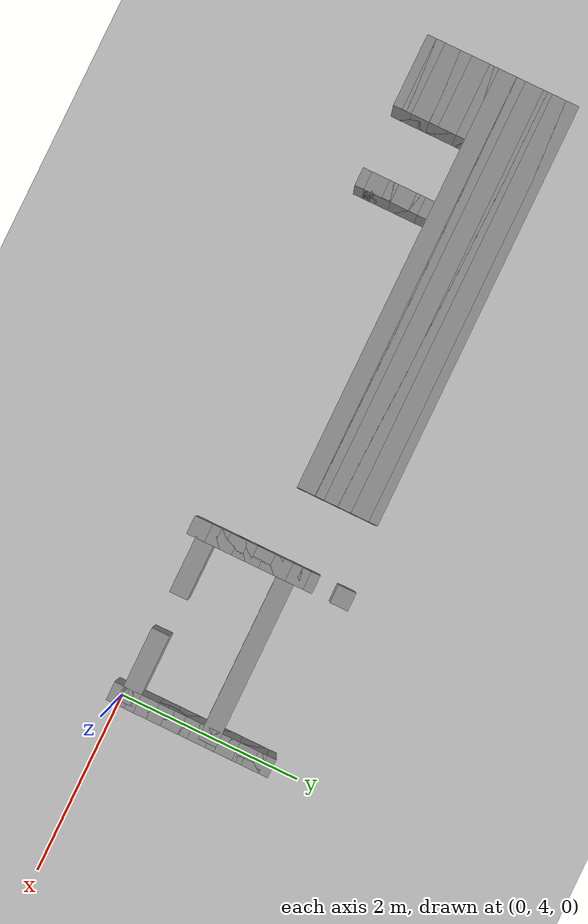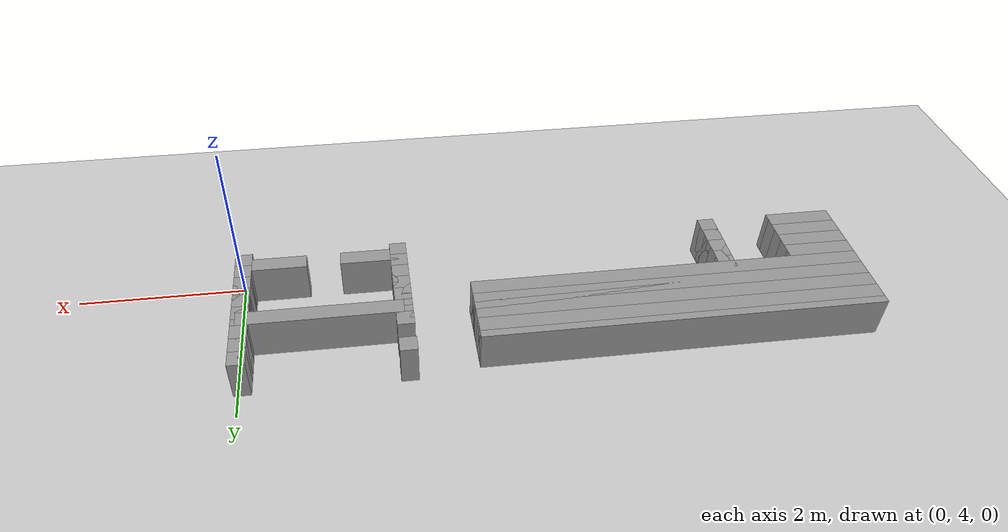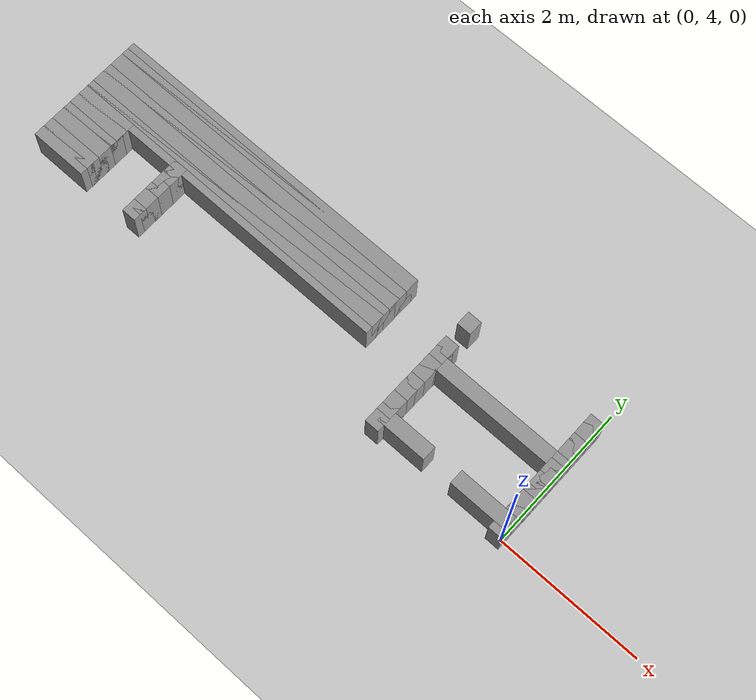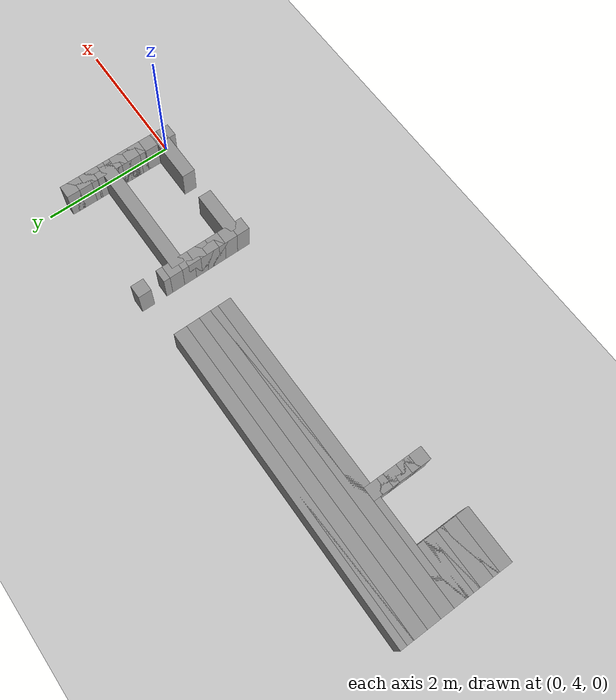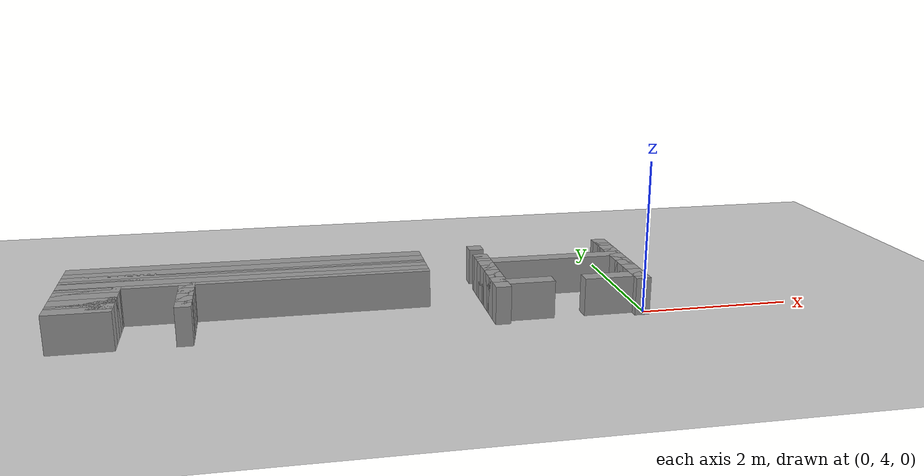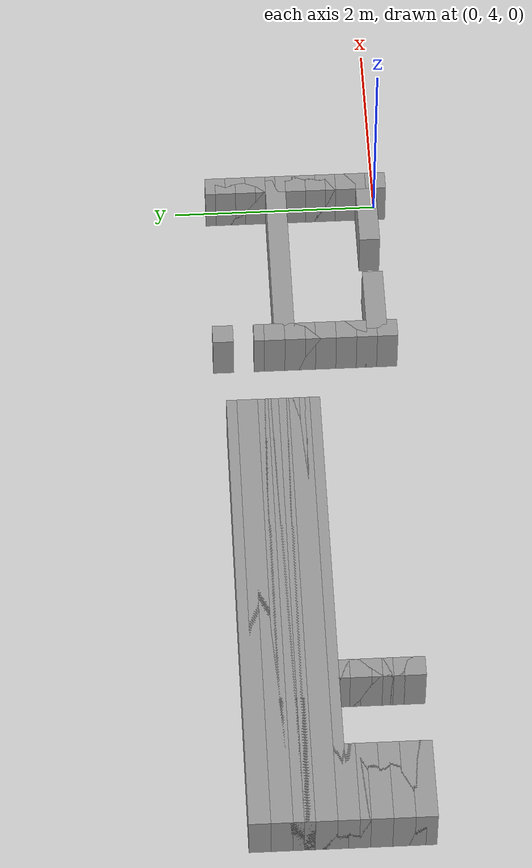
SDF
<sdf version="1.6">
 <world name="GridMap">
  <include><uri>model://sun</uri></include>
  <include><uri>model://ground_plane</uri></include>
  <model name="GridMap">
   <link name="Wall_(0.5,40.0)">
    <collision name="Wall_(0.5,40.0)_Collision">
     <geometry><box><size>0.2 0.2 0.5</size></box></geometry>
     <pose>-0.05 4.0 0.25 0 -0 0</pose>
    </collision>
    <inertial>
     <mass>0.5</mass>
     <pose>0 0.01 0 0 0 0</pose>
     <inertia><ixx>0.004</ixx><ixy>0.001</ixy><ixz>0</ixz><iyy>0.006</iyy><iyz>0</iyz><izz>0.007</izz></inertia>
    </inertial>
    <visual name="Wall_(0.5,40.0)_Visual">
     <geometry><box><size>0.2 0.2 0.5</size></box></geometry>
     <pose>-0.05 4.0 0.25 0 -0 0</pose>
     <material>
      <script><uri>file://media/materials/scripts/gazebo.material</uri><name>Gazebo/Grey</name></script>
      <ambient>1 1 1 1</ambient>
     </material>
     <meta><layer>0</layer></meta>
    </visual>
   </link>
   <link name="Wall_(19.0,40.0)">
    <collision name="Wall_(19.0,40.0)_Collision">
     <geometry><box><size>0.2 0.2 0.5</size></box></geometry>
     <pose>-1.9000000000000001 4.0 0.25 0 -0 0</pose>
    </collision>
    <inertial>
     <mass>0.5</mass>
     <pose>0 0.01 0 0 0 0</pose>
     <inertia><ixx>0.004</ixx><ixy>0.001</ixy><ixz>0</ixz><iyy>0.006</iyy><iyz>0</iyz><izz>0.007</izz></inertia>
    </inertial>
    <visual name="Wall_(19.0,40.0)_Visual">
     <geometry><box><size>0.2 0.2 0.5</size></box></geometry>
     <pose>-1.9000000000000001 4.0 0.25 0 -0 0</pose>
     <material>
      <script><uri>file://media/materials/scripts/gazebo.material</uri><name>Gazebo/Grey</name></script>
      <ambient>1 1 1 1</ambient>
     </material>
     <meta><layer>0</layer></meta>
    </visual>
   </link>
   <link name="Wall_(58.0,40.0)">
    <collision name="Wall_(58.0,40.0)_Collision">
     <geometry><box><size>0.2 0.2 0.5</size></box></geometry>
     <pose>-5.800000000000001 4.0 0.25 0 -0 0</pose>
    </collision>
    <inertial>
     <mass>0.5</mass>
     <pose>0 0.01 0 0 0 0</pose>
     <inertia><ixx>0.004</ixx><ixy>0.001</ixy><ixz>0</ixz><iyy>0.006</iyy><iyz>0</iyz><izz>0.007</izz></inertia>
    </inertial>
    <visual name="Wall_(58.0,40.0)_Visual">
     <geometry><box><size>0.2 0.2 0.5</size></box></geometry>
     <pose>-5.800000000000001 4.0 0.25 0 -0 0</pose>
     <material>
      <script><uri>file://media/materials/scripts/gazebo.material</uri><name>Gazebo/Grey</name></script>
      <ambient>1 1 1 1</ambient>
     </material>
     <meta><layer>0</layer></meta>
    </visual>
   </link>
   <link name="Wall_(70.0,40.0)">
    <collision name="Wall_(70.0,40.0)_Collision">
     <geometry><box><size>0.8 0.2 0.5</size></box></geometry>
     <pose>-7.0 4.0 0.25 0 -0 0</pose>
    </collision>
    <inertial>
     <mass>0.5</mass>
     <pose>0 0.01 0 0 0 0</pose>
     <inertia><ixx>0.004</ixx><ixy>0.001</ixy><ixz>0</ixz><iyy>0.006</iyy><iyz>0</iyz><izz>0.007</izz></inertia>
    </inertial>
    <visual name="Wall_(70.0,40.0)_Visual">
     <geometry><box><size>0.8 0.2 0.5</size></box></geometry>
     <pose>-7.0 4.0 0.25 0 -0 0</pose>
     <material>
      <script><uri>file://media/materials/scripts/gazebo.material</uri><name>Gazebo/Grey</name></script>
      <ambient>1 1 1 1</ambient>
     </material>
     <meta><layer>0</layer></meta>
    </visual>
   </link>
   <link name="Wall_(4.0,41.0)">
    <collision name="Wall_(4.0,41.0)_Collision">
     <geometry><box><size>0.8 0.2 0.5</size></box></geometry>
     <pose>-0.4 4.1000000000000005 0.25 0 -0 0</pose>
    </collision>
    <inertial>
     <mass>0.5</mass>
     <pose>0 0.01 0 0 0 0</pose>
     <inertia><ixx>0.004</ixx><ixy>0.001</ixy><ixz>0</ixz><iyy>0.006</iyy><iyz>0</iyz><izz>0.007</izz></inertia>
    </inertial>
    <visual name="Wall_(4.0,41.0)_Visual">
     <geometry><box><size>0.8 0.2 0.5</size></box></geometry>
     <pose>-0.4 4.1000000000000005 0.25 0 -0 0</pose>
     <material>
      <script><uri>file://media/materials/scripts/gazebo.material</uri><name>Gazebo/Grey</name></script>
      <ambient>1 1 1 1</ambient>
     </material>
     <meta><layer>0</layer></meta>
    </visual>
   </link>
   <link name="Wall_(15.5,41.0)">
    <collision name="Wall_(15.5,41.0)_Collision">
     <geometry><box><size>0.7000000000000001 0.2 0.5</size></box></geometry>
     <pose>-1.55 4.1000000000000005 0.25 0 -0 0</pose>
    </collision>
    <inertial>
     <mass>0.5</mass>
     <pose>0 0.01 0 0 0 0</pose>
     <inertia><ixx>0.004</ixx><ixy>0.001</ixy><ixz>0</ixz><iyy>0.006</iyy><iyz>0</iyz><izz>0.007</izz></inertia>
    </inertial>
    <visual name="Wall_(15.5,41.0)_Visual">
     <geometry><box><size>0.7000000000000001 0.2 0.5</size></box></geometry>
     <pose>-1.55 4.1000000000000005 0.25 0 -0 0</pose>
     <material>
      <script><uri>file://media/materials/scripts/gazebo.material</uri><name>Gazebo/Grey</name></script>
      <ambient>1 1 1 1</ambient>
     </material>
     <meta><layer>0</layer></meta>
    </visual>
   </link>
   <link name="Wall_(58.0,41.0)">
    <collision name="Wall_(58.0,41.0)_Collision">
     <geometry><box><size>0.2 0.2 0.5</size></box></geometry>
     <pose>-5.800000000000001 4.1000000000000005 0.25 0 -0 0</pose>
    </collision>
    <inertial>
     <mass>0.5</mass>
     <pose>0 0.01 0 0 0 0</pose>
     <inertia><ixx>0.004</ixx><ixy>0.001</ixy><ixz>0</ixz><iyy>0.006</iyy><iyz>0</iyz><izz>0.007</izz></inertia>
    </inertial>
    <visual name="Wall_(58.0,41.0)_Visual">
     <geometry><box><size>0.2 0.2 0.5</size></box></geometry>
     <pose>-5.800000000000001 4.1000000000000005 0.25 0 -0 0</pose>
     <material>
      <script><uri>file://media/materials/scripts/gazebo.material</uri><name>Gazebo/Grey</name></script>
      <ambient>1 1 1 1</ambient>
     </material>
     <meta><layer>0</layer></meta>
    </visual>
   </link>
   <link name="Wall_(70.0,41.0)">
    <collision name="Wall_(70.0,41.0)_Collision">
     <geometry><box><size>0.8 0.2 0.5</size></box></geometry>
     <pose>-7.0 4.1000000000000005 0.25 0 -0 0</pose>
    </collision>
    <inertial>
     <mass>0.5</mass>
     <pose>0 0.01 0 0 0 0</pose>
     <inertia><ixx>0.004</ixx><ixy>0.001</ixy><ixz>0</ixz><iyy>0.006</iyy><iyz>0</iyz><izz>0.007</izz></inertia>
    </inertial>
    <visual name="Wall_(70.0,41.0)_Visual">
     <geometry><box><size>0.8 0.2 0.5</size></box></geometry>
     <pose>-7.0 4.1000000000000005 0.25 0 -0 0</pose>
     <material>
      <script><uri>file://media/materials/scripts/gazebo.material</uri><name>Gazebo/Grey</name></script>
      <ambient>1 1 1 1</ambient>
     </material>
     <meta><layer>0</layer></meta>
    </visual>
   </link>
   <link name="Wall_(0.5,42.0)">
    <collision name="Wall_(0.5,42.0)_Collision">
     <geometry><box><size>0.2 0.2 0.5</size></box></geometry>
     <pose>-0.05 4.2 0.25 0 -0 0</pose>
    </collision>
    <inertial>
     <mass>0.5</mass>
     <pose>0 0.01 0 0 0 0</pose>
     <inertia><ixx>0.004</ixx><ixy>0.001</ixy><ixz>0</ixz><iyy>0.006</iyy><iyz>0</iyz><izz>0.007</izz></inertia>
    </inertial>
    <visual name="Wall_(0.5,42.0)_Visual">
     <geometry><box><size>0.2 0.2 0.5</size></box></geometry>
     <pose>-0.05 4.2 0.25 0 -0 0</pose>
     <material>
      <script><uri>file://media/materials/scripts/gazebo.material</uri><name>Gazebo/Grey</name></script>
      <ambient>1 1 1 1</ambient>
     </material>
     <meta><layer>0</layer></meta>
    </visual>
   </link>
   <link name="Wall_(19.0,42.0)">
    <collision name="Wall_(19.0,42.0)_Collision">
     <geometry><box><size>0.2 0.2 0.5</size></box></geometry>
     <pose>-1.9000000000000001 4.2 0.25 0 -0 0</pose>
    </collision>
    <inertial>
     <mass>0.5</mass>
     <pose>0 0.01 0 0 0 0</pose>
     <inertia><ixx>0.004</ixx><ixy>0.001</ixy><ixz>0</ixz><iyy>0.006</iyy><iyz>0</iyz><izz>0.007</izz></inertia>
    </inertial>
    <visual name="Wall_(19.0,42.0)_Visual">
     <geometry><box><size>0.2 0.2 0.5</size></box></geometry>
     <pose>-1.9000000000000001 4.2 0.25 0 -0 0</pose>
     <material>
      <script><uri>file://media/materials/scripts/gazebo.material</uri><name>Gazebo/Grey</name></script>
      <ambient>1 1 1 1</ambient>
     </material>
     <meta><layer>0</layer></meta>
    </visual>
   </link>
   <link name="Wall_(58.0,42.0)">
    <collision name="Wall_(58.0,42.0)_Collision">
     <geometry><box><size>0.2 0.2 0.5</size></box></geometry>
     <pose>-5.800000000000001 4.2 0.25 0 -0 0</pose>
    </collision>
    <inertial>
     <mass>0.5</mass>
     <pose>0 0.01 0 0 0 0</pose>
     <inertia><ixx>0.004</ixx><ixy>0.001</ixy><ixz>0</ixz><iyy>0.006</iyy><iyz>0</iyz><izz>0.007</izz></inertia>
    </inertial>
    <visual name="Wall_(58.0,42.0)_Visual">
     <geometry><box><size>0.2 0.2 0.5</size></box></geometry>
     <pose>-5.800000000000001 4.2 0.25 0 -0 0</pose>
     <material>
      <script><uri>file://media/materials/scripts/gazebo.material</uri><name>Gazebo/Grey</name></script>
      <ambient>1 1 1 1</ambient>
     </material>
     <meta><layer>0</layer></meta>
    </visual>
   </link>
   <link name="Wall_(70.0,42.0)">
    <collision name="Wall_(70.0,42.0)_Collision">
     <geometry><box><size>0.8 0.2 0.5</size></box></geometry>
     <pose>-7.0 4.2 0.25 0 -0 0</pose>
    </collision>
    <inertial>
     <mass>0.5</mass>
     <pose>0 0.01 0 0 0 0</pose>
     <inertia><ixx>0.004</ixx><ixy>0.001</ixy><ixz>0</ixz><iyy>0.006</iyy><iyz>0</iyz><izz>0.007</izz></inertia>
    </inertial>
    <visual name="Wall_(70.0,42.0)_Visual">
     <geometry><box><size>0.8 0.2 0.5</size></box></geometry>
     <pose>-7.0 4.2 0.25 0 -0 0</pose>
     <material>
      <script><uri>file://media/materials/scripts/gazebo.material</uri><name>Gazebo/Grey</name></script>
      <ambient>1 1 1 1</ambient>
     </material>
     <meta><layer>0</layer></meta>
    </visual>
   </link>
   <link name="Wall_(0.5,43.0)">
    <collision name="Wall_(0.5,43.0)_Collision">
     <geometry><box><size>0.2 0.2 0.5</size></box></geometry>
     <pose>-0.05 4.3 0.25 0 -0 0</pose>
    </collision>
    <inertial>
     <mass>0.5</mass>
     <pose>0 0.01 0 0 0 0</pose>
     <inertia><ixx>0.004</ixx><ixy>0.001</ixy><ixz>0</ixz><iyy>0.006</iyy><iyz>0</iyz><izz>0.007</izz></inertia>
    </inertial>
    <visual name="Wall_(0.5,43.0)_Visual">
     <geometry><box><size>0.2 0.2 0.5</size></box></geometry>
     <pose>-0.05 4.3 0.25 0 -0 0</pose>
     <material>
      <script><uri>file://media/materials/scripts/gazebo.material</uri><name>Gazebo/Grey</name></script>
      <ambient>1 1 1 1</ambient>
     </material>
     <meta><layer>0</layer></meta>
    </visual>
   </link>
   <link name="Wall_(19.0,43.0)">
    <collision name="Wall_(19.0,43.0)_Collision">
     <geometry><box><size>0.2 0.2 0.5</size></box></geometry>
     <pose>-1.9000000000000001 4.3 0.25 0 -0 0</pose>
    </collision>
    <inertial>
     <mass>0.5</mass>
     <pose>0 0.01 0 0 0 0</pose>
     <inertia><ixx>0.004</ixx><ixy>0.001</ixy><ixz>0</ixz><iyy>0.006</iyy><iyz>0</iyz><izz>0.007</izz></inertia>
    </inertial>
    <visual name="Wall_(19.0,43.0)_Visual">
     <geometry><box><size>0.2 0.2 0.5</size></box></geometry>
     <pose>-1.9000000000000001 4.3 0.25 0 -0 0</pose>
     <material>
      <script><uri>file://media/materials/scripts/gazebo.material</uri><name>Gazebo/Grey</name></script>
      <ambient>1 1 1 1</ambient>
     </material>
     <meta><layer>0</layer></meta>
    </visual>
   </link>
   <link name="Wall_(58.0,43.0)">
    <collision name="Wall_(58.0,43.0)_Collision">
     <geometry><box><size>0.2 0.2 0.5</size></box></geometry>
     <pose>-5.800000000000001 4.3 0.25 0 -0 0</pose>
    </collision>
    <inertial>
     <mass>0.5</mass>
     <pose>0 0.01 0 0 0 0</pose>
     <inertia><ixx>0.004</ixx><ixy>0.001</ixy><ixz>0</ixz><iyy>0.006</iyy><iyz>0</iyz><izz>0.007</izz></inertia>
    </inertial>
    <visual name="Wall_(58.0,43.0)_Visual">
     <geometry><box><size>0.2 0.2 0.5</size></box></geometry>
     <pose>-5.800000000000001 4.3 0.25 0 -0 0</pose>
     <material>
      <script><uri>file://media/materials/scripts/gazebo.material</uri><name>Gazebo/Grey</name></script>
      <ambient>1 1 1 1</ambient>
     </material>
     <meta><layer>0</layer></meta>
    </visual>
   </link>
   <link name="Wall_(70.0,43.0)">
    <collision name="Wall_(70.0,43.0)_Collision">
     <geometry><box><size>0.8 0.2 0.5</size></box></geometry>
     <pose>-7.0 4.3 0.25 0 -0 0</pose>
    </collision>
    <inertial>
     <mass>0.5</mass>
     <pose>0 0.01 0 0 0 0</pose>
     <inertia><ixx>0.004</ixx><ixy>0.001</ixy><ixz>0</ixz><iyy>0.006</iyy><iyz>0</iyz><izz>0.007</izz></inertia>
    </inertial>
    <visual name="Wall_(70.0,43.0)_Visual">
     <geometry><box><size>0.8 0.2 0.5</size></box></geometry>
     <pose>-7.0 4.3 0.25 0 -0 0</pose>
     <material>
      <script><uri>file://media/materials/scripts/gazebo.material</uri><name>Gazebo/Grey</name></script>
      <ambient>1 1 1 1</ambient>
     </material>
     <meta><layer>0</layer></meta>
    </visual>
   </link>
   <link name="Wall_(0.5,44.0)">
    <collision name="Wall_(0.5,44.0)_Collision">
     <geometry><box><size>0.2 0.2 0.5</size></box></geometry>
     <pose>-0.05 4.4 0.25 0 -0 0</pose>
    </collision>
    <inertial>
     <mass>0.5</mass>
     <pose>0 0.01 0 0 0 0</pose>
     <inertia><ixx>0.004</ixx><ixy>0.001</ixy><ixz>0</ixz><iyy>0.006</iyy><iyz>0</iyz><izz>0.007</izz></inertia>
    </inertial>
    <visual name="Wall_(0.5,44.0)_Visual">
     <geometry><box><size>0.2 0.2 0.5</size></box></geometry>
     <pose>-0.05 4.4 0.25 0 -0 0</pose>
     <material>
      <script><uri>file://media/materials/scripts/gazebo.material</uri><name>Gazebo/Grey</name></script>
      <ambient>1 1 1 1</ambient>
     </material>
     <meta><layer>0</layer></meta>
    </visual>
   </link>
   <link name="Wall_(19.0,44.0)">
    <collision name="Wall_(19.0,44.0)_Collision">
     <geometry><box><size>0.2 0.2 0.5</size></box></geometry>
     <pose>-1.9000000000000001 4.4 0.25 0 -0 0</pose>
    </collision>
    <inertial>
     <mass>0.5</mass>
     <pose>0 0.01 0 0 0 0</pose>
     <inertia><ixx>0.004</ixx><ixy>0.001</ixy><ixz>0</ixz><iyy>0.006</iyy><iyz>0</iyz><izz>0.007</izz></inertia>
    </inertial>
    <visual name="Wall_(19.0,44.0)_Visual">
     <geometry><box><size>0.2 0.2 0.5</size></box></geometry>
     <pose>-1.9000000000000001 4.4 0.25 0 -0 0</pose>
     <material>
      <script><uri>file://media/materials/scripts/gazebo.material</uri><name>Gazebo/Grey</name></script>
      <ambient>1 1 1 1</ambient>
     </material>
     <meta><layer>0</layer></meta>
    </visual>
   </link>
   <link name="Wall_(58.0,44.0)">
    <collision name="Wall_(58.0,44.0)_Collision">
     <geometry><box><size>0.2 0.2 0.5</size></box></geometry>
     <pose>-5.800000000000001 4.4 0.25 0 -0 0</pose>
    </collision>
    <inertial>
     <mass>0.5</mass>
     <pose>0 0.01 0 0 0 0</pose>
     <inertia><ixx>0.004</ixx><ixy>0.001</ixy><ixz>0</ixz><iyy>0.006</iyy><iyz>0</iyz><izz>0.007</izz></inertia>
    </inertial>
    <visual name="Wall_(58.0,44.0)_Visual">
     <geometry><box><size>0.2 0.2 0.5</size></box></geometry>
     <pose>-5.800000000000001 4.4 0.25 0 -0 0</pose>
     <material>
      <script><uri>file://media/materials/scripts/gazebo.material</uri><name>Gazebo/Grey</name></script>
      <ambient>1 1 1 1</ambient>
     </material>
     <meta><layer>0</layer></meta>
    </visual>
   </link>
   <link name="Wall_(70.0,44.0)">
    <collision name="Wall_(70.0,44.0)_Collision">
     <geometry><box><size>0.8 0.2 0.5</size></box></geometry>
     <pose>-7.0 4.4 0.25 0 -0 0</pose>
    </collision>
    <inertial>
     <mass>0.5</mass>
     <pose>0 0.01 0 0 0 0</pose>
     <inertia><ixx>0.004</ixx><ixy>0.001</ixy><ixz>0</ixz><iyy>0.006</iyy><iyz>0</iyz><izz>0.007</izz></inertia>
    </inertial>
    <visual name="Wall_(70.0,44.0)_Visual">
     <geometry><box><size>0.8 0.2 0.5</size></box></geometry>
     <pose>-7.0 4.4 0.25 0 -0 0</pose>
     <material>
      <script><uri>file://media/materials/scripts/gazebo.material</uri><name>Gazebo/Grey</name></script>
      <ambient>1 1 1 1</ambient>
     </material>
     <meta><layer>0</layer></meta>
    </visual>
   </link>
   <link name="Wall_(0.5,45.0)">
    <collision name="Wall_(0.5,45.0)_Collision">
     <geometry><box><size>0.2 0.2 0.5</size></box></geometry>
     <pose>-0.05 4.5 0.25 0 -0 0</pose>
    </collision>
    <inertial>
     <mass>0.5</mass>
     <pose>0 0.01 0 0 0 0</pose>
     <inertia><ixx>0.004</ixx><ixy>0.001</ixy><ixz>0</ixz><iyy>0.006</iyy><iyz>0</iyz><izz>0.007</izz></inertia>
    </inertial>
    <visual name="Wall_(0.5,45.0)_Visual">
     <geometry><box><size>0.2 0.2 0.5</size></box></geometry>
     <pose>-0.05 4.5 0.25 0 -0 0</pose>
     <material>
      <script><uri>file://media/materials/scripts/gazebo.material</uri><name>Gazebo/Grey</name></script>
      <ambient>1 1 1 1</ambient>
     </material>
     <meta><layer>0</layer></meta>
    </visual>
   </link>
   <link name="Wall_(19.0,45.0)">
    <collision name="Wall_(19.0,45.0)_Collision">
     <geometry><box><size>0.2 0.2 0.5</size></box></geometry>
     <pose>-1.9000000000000001 4.5 0.25 0 -0 0</pose>
    </collision>
    <inertial>
     <mass>0.5</mass>
     <pose>0 0.01 0 0 0 0</pose>
     <inertia><ixx>0.004</ixx><ixy>0.001</ixy><ixz>0</ixz><iyy>0.006</iyy><iyz>0</iyz><izz>0.007</izz></inertia>
    </inertial>
    <visual name="Wall_(19.0,45.0)_Visual">
     <geometry><box><size>0.2 0.2 0.5</size></box></geometry>
     <pose>-1.9000000000000001 4.5 0.25 0 -0 0</pose>
     <material>
      <script><uri>file://media/materials/scripts/gazebo.material</uri><name>Gazebo/Grey</name></script>
      <ambient>1 1 1 1</ambient>
     </material>
     <meta><layer>0</layer></meta>
    </visual>
   </link>
   <link name="Wall_(58.0,45.0)">
    <collision name="Wall_(58.0,45.0)_Collision">
     <geometry><box><size>0.2 0.2 0.5</size></box></geometry>
     <pose>-5.800000000000001 4.5 0.25 0 -0 0</pose>
    </collision>
    <inertial>
     <mass>0.5</mass>
     <pose>0 0.01 0 0 0 0</pose>
     <inertia><ixx>0.004</ixx><ixy>0.001</ixy><ixz>0</ixz><iyy>0.006</iyy><iyz>0</iyz><izz>0.007</izz></inertia>
    </inertial>
    <visual name="Wall_(58.0,45.0)_Visual">
     <geometry><box><size>0.2 0.2 0.5</size></box></geometry>
     <pose>-5.800000000000001 4.5 0.25 0 -0 0</pose>
     <material>
      <script><uri>file://media/materials/scripts/gazebo.material</uri><name>Gazebo/Grey</name></script>
      <ambient>1 1 1 1</ambient>
     </material>
     <meta><layer>0</layer></meta>
    </visual>
   </link>
   <link name="Wall_(70.0,45.0)">
    <collision name="Wall_(70.0,45.0)_Collision">
     <geometry><box><size>0.8 0.2 0.5</size></box></geometry>
     <pose>-7.0 4.5 0.25 0 -0 0</pose>
    </collision>
    <inertial>
     <mass>0.5</mass>
     <pose>0 0.01 0 0 0 0</pose>
     <inertia><ixx>0.004</ixx><ixy>0.001</ixy><ixz>0</ixz><iyy>0.006</iyy><iyz>0</iyz><izz>0.007</izz></inertia>
    </inertial>
    <visual name="Wall_(70.0,45.0)_Visual">
     <geometry><box><size>0.8 0.2 0.5</size></box></geometry>
     <pose>-7.0 4.5 0.25 0 -0 0</pose>
     <material>
      <script><uri>file://media/materials/scripts/gazebo.material</uri><name>Gazebo/Grey</name></script>
      <ambient>1 1 1 1</ambient>
     </material>
     <meta><layer>0</layer></meta>
    </visual>
   </link>
   <link name="Wall_(0.5,46.0)">
    <collision name="Wall_(0.5,46.0)_Collision">
     <geometry><box><size>0.2 0.2 0.5</size></box></geometry>
     <pose>-0.05 4.6000000000000005 0.25 0 -0 0</pose>
    </collision>
    <inertial>
     <mass>0.5</mass>
     <pose>0 0.01 0 0 0 0</pose>
     <inertia><ixx>0.004</ixx><ixy>0.001</ixy><ixz>0</ixz><iyy>0.006</iyy><iyz>0</iyz><izz>0.007</izz></inertia>
    </inertial>
    <visual name="Wall_(0.5,46.0)_Visual">
     <geometry><box><size>0.2 0.2 0.5</size></box></geometry>
     <pose>-0.05 4.6000000000000005 0.25 0 -0 0</pose>
     <material>
      <script><uri>file://media/materials/scripts/gazebo.material</uri><name>Gazebo/Grey</name></script>
      <ambient>1 1 1 1</ambient>
     </material>
     <meta><layer>0</layer></meta>
    </visual>
   </link>
   <link name="Wall_(19.0,46.0)">
    <collision name="Wall_(19.0,46.0)_Collision">
     <geometry><box><size>0.2 0.2 0.5</size></box></geometry>
     <pose>-1.9000000000000001 4.6000000000000005 0.25 0 -0 0</pose>
    </collision>
    <inertial>
     <mass>0.5</mass>
     <pose>0 0.01 0 0 0 0</pose>
     <inertia><ixx>0.004</ixx><ixy>0.001</ixy><ixz>0</ixz><iyy>0.006</iyy><iyz>0</iyz><izz>0.007</izz></inertia>
    </inertial>
    <visual name="Wall_(19.0,46.0)_Visual">
     <geometry><box><size>0.2 0.2 0.5</size></box></geometry>
     <pose>-1.9000000000000001 4.6000000000000005 0.25 0 -0 0</pose>
     <material>
      <script><uri>file://media/materials/scripts/gazebo.material</uri><name>Gazebo/Grey</name></script>
      <ambient>1 1 1 1</ambient>
     </material>
     <meta><layer>0</layer></meta>
    </visual>
   </link>
   <link name="Wall_(58.0,46.0)">
    <collision name="Wall_(58.0,46.0)_Collision">
     <geometry><box><size>0.2 0.2 0.5</size></box></geometry>
     <pose>-5.800000000000001 4.6000000000000005 0.25 0 -0 0</pose>
    </collision>
    <inertial>
     <mass>0.5</mass>
     <pose>0 0.01 0 0 0 0</pose>
     <inertia><ixx>0.004</ixx><ixy>0.001</ixy><ixz>0</ixz><iyy>0.006</iyy><iyz>0</iyz><izz>0.007</izz></inertia>
    </inertial>
    <visual name="Wall_(58.0,46.0)_Visual">
     <geometry><box><size>0.2 0.2 0.5</size></box></geometry>
     <pose>-5.800000000000001 4.6000000000000005 0.25 0 -0 0</pose>
     <material>
      <script><uri>file://media/materials/scripts/gazebo.material</uri><name>Gazebo/Grey</name></script>
      <ambient>1 1 1 1</ambient>
     </material>
     <meta><layer>0</layer></meta>
    </visual>
   </link>
   <link name="Wall_(70.0,46.0)">
    <collision name="Wall_(70.0,46.0)_Collision">
     <geometry><box><size>0.8 0.2 0.5</size></box></geometry>
     <pose>-7.0 4.6000000000000005 0.25 0 -0 0</pose>
    </collision>
    <inertial>
     <mass>0.5</mass>
     <pose>0 0.01 0 0 0 0</pose>
     <inertia><ixx>0.004</ixx><ixy>0.001</ixy><ixz>0</ixz><iyy>0.006</iyy><iyz>0</iyz><izz>0.007</izz></inertia>
    </inertial>
    <visual name="Wall_(70.0,46.0)_Visual">
     <geometry><box><size>0.8 0.2 0.5</size></box></geometry>
     <pose>-7.0 4.6000000000000005 0.25 0 -0 0</pose>
     <material>
      <script><uri>file://media/materials/scripts/gazebo.material</uri><name>Gazebo/Grey</name></script>
      <ambient>1 1 1 1</ambient>
     </material>
     <meta><layer>0</layer></meta>
    </visual>
   </link>
   <link name="Wall_(0.5,47.0)">
    <collision name="Wall_(0.5,47.0)_Collision">
     <geometry><box><size>0.2 0.2 0.5</size></box></geometry>
     <pose>-0.05 4.7 0.25 0 -0 0</pose>
    </collision>
    <inertial>
     <mass>0.5</mass>
     <pose>0 0.01 0 0 0 0</pose>
     <inertia><ixx>0.004</ixx><ixy>0.001</ixy><ixz>0</ixz><iyy>0.006</iyy><iyz>0</iyz><izz>0.007</izz></inertia>
    </inertial>
    <visual name="Wall_(0.5,47.0)_Visual">
     <geometry><box><size>0.2 0.2 0.5</size></box></geometry>
     <pose>-0.05 4.7 0.25 0 -0 0</pose>
     <material>
      <script><uri>file://media/materials/scripts/gazebo.material</uri><name>Gazebo/Grey</name></script>
      <ambient>1 1 1 1</ambient>
     </material>
     <meta><layer>0</layer></meta>
    </visual>
   </link>
   <link name="Wall_(19.0,47.0)">
    <collision name="Wall_(19.0,47.0)_Collision">
     <geometry><box><size>0.2 0.2 0.5</size></box></geometry>
     <pose>-1.9000000000000001 4.7 0.25 0 -0 0</pose>
    </collision>
    <inertial>
     <mass>0.5</mass>
     <pose>0 0.01 0 0 0 0</pose>
     <inertia><ixx>0.004</ixx><ixy>0.001</ixy><ixz>0</ixz><iyy>0.006</iyy><iyz>0</iyz><izz>0.007</izz></inertia>
    </inertial>
    <visual name="Wall_(19.0,47.0)_Visual">
     <geometry><box><size>0.2 0.2 0.5</size></box></geometry>
     <pose>-1.9000000000000001 4.7 0.25 0 -0 0</pose>
     <material>
      <script><uri>file://media/materials/scripts/gazebo.material</uri><name>Gazebo/Grey</name></script>
      <ambient>1 1 1 1</ambient>
     </material>
     <meta><layer>0</layer></meta>
    </visual>
   </link>
   <link name="Wall_(58.0,47.0)">
    <collision name="Wall_(58.0,47.0)_Collision">
     <geometry><box><size>0.2 0.2 0.5</size></box></geometry>
     <pose>-5.800000000000001 4.7 0.25 0 -0 0</pose>
    </collision>
    <inertial>
     <mass>0.5</mass>
     <pose>0 0.01 0 0 0 0</pose>
     <inertia><ixx>0.004</ixx><ixy>0.001</ixy><ixz>0</ixz><iyy>0.006</iyy><iyz>0</iyz><izz>0.007</izz></inertia>
    </inertial>
    <visual name="Wall_(58.0,47.0)_Visual">
     <geometry><box><size>0.2 0.2 0.5</size></box></geometry>
     <pose>-5.800000000000001 4.7 0.25 0 -0 0</pose>
     <material>
      <script><uri>file://media/materials/scripts/gazebo.material</uri><name>Gazebo/Grey</name></script>
      <ambient>1 1 1 1</ambient>
     </material>
     <meta><layer>0</layer></meta>
    </visual>
   </link>
   <link name="Wall_(70.0,47.0)">
    <collision name="Wall_(70.0,47.0)_Collision">
     <geometry><box><size>0.8 0.2 0.5</size></box></geometry>
     <pose>-7.0 4.7 0.25 0 -0 0</pose>
    </collision>
    <inertial>
     <mass>0.5</mass>
     <pose>0 0.01 0 0 0 0</pose>
     <inertia><ixx>0.004</ixx><ixy>0.001</ixy><ixz>0</ixz><iyy>0.006</iyy><iyz>0</iyz><izz>0.007</izz></inertia>
    </inertial>
    <visual name="Wall_(70.0,47.0)_Visual">
     <geometry><box><size>0.8 0.2 0.5</size></box></geometry>
     <pose>-7.0 4.7 0.25 0 -0 0</pose>
     <material>
      <script><uri>file://media/materials/scripts/gazebo.material</uri><name>Gazebo/Grey</name></script>
      <ambient>1 1 1 1</ambient>
     </material>
     <meta><layer>0</layer></meta>
    </visual>
   </link>
   <link name="Wall_(0.5,48.0)">
    <collision name="Wall_(0.5,48.0)_Collision">
     <geometry><box><size>0.2 0.2 0.5</size></box></geometry>
     <pose>-0.05 4.800000000000001 0.25 0 -0 0</pose>
    </collision>
    <inertial>
     <mass>0.5</mass>
     <pose>0 0.01 0 0 0 0</pose>
     <inertia><ixx>0.004</ixx><ixy>0.001</ixy><ixz>0</ixz><iyy>0.006</iyy><iyz>0</iyz><izz>0.007</izz></inertia>
    </inertial>
    <visual name="Wall_(0.5,48.0)_Visual">
     <geometry><box><size>0.2 0.2 0.5</size></box></geometry>
     <pose>-0.05 4.800000000000001 0.25 0 -0 0</pose>
     <material>
      <script><uri>file://media/materials/scripts/gazebo.material</uri><name>Gazebo/Grey</name></script>
      <ambient>1 1 1 1</ambient>
     </material>
     <meta><layer>0</layer></meta>
    </visual>
   </link>
   <link name="Wall_(19.0,48.0)">
    <collision name="Wall_(19.0,48.0)_Collision">
     <geometry><box><size>0.2 0.2 0.5</size></box></geometry>
     <pose>-1.9000000000000001 4.800000000000001 0.25 0 -0 0</pose>
    </collision>
    <inertial>
     <mass>0.5</mass>
     <pose>0 0.01 0 0 0 0</pose>
     <inertia><ixx>0.004</ixx><ixy>0.001</ixy><ixz>0</ixz><iyy>0.006</iyy><iyz>0</iyz><izz>0.007</izz></inertia>
    </inertial>
    <visual name="Wall_(19.0,48.0)_Visual">
     <geometry><box><size>0.2 0.2 0.5</size></box></geometry>
     <pose>-1.9000000000000001 4.800000000000001 0.25 0 -0 0</pose>
     <material>
      <script><uri>file://media/materials/scripts/gazebo.material</uri><name>Gazebo/Grey</name></script>
      <ambient>1 1 1 1</ambient>
     </material>
     <meta><layer>0</layer></meta>
    </visual>
   </link>
   <link name="Wall_(50.5,48.0)">
    <collision name="Wall_(50.5,48.0)_Collision">
     <geometry><box><size>4.7 0.2 0.5</size></box></geometry>
     <pose>-5.050000000000001 4.800000000000001 0.25 0 -0 0</pose>
    </collision>
    <inertial>
     <mass>0.5</mass>
     <pose>0 0.01 0 0 0 0</pose>
     <inertia><ixx>0.004</ixx><ixy>0.001</ixy><ixz>0</ixz><iyy>0.006</iyy><iyz>0</iyz><izz>0.007</izz></inertia>
    </inertial>
    <visual name="Wall_(50.5,48.0)_Visual">
     <geometry><box><size>4.7 0.2 0.5</size></box></geometry>
     <pose>-5.050000000000001 4.800000000000001 0.25 0 -0 0</pose>
     <material>
      <script><uri>file://media/materials/scripts/gazebo.material</uri><name>Gazebo/Grey</name></script>
      <ambient>1 1 1 1</ambient>
     </material>
     <meta><layer>0</layer></meta>
    </visual>
   </link>
   <link name="Wall_(0.5,49.0)">
    <collision name="Wall_(0.5,49.0)_Collision">
     <geometry><box><size>0.2 0.2 0.5</size></box></geometry>
     <pose>-0.05 4.9 0.25 0 -0 0</pose>
    </collision>
    <inertial>
     <mass>0.5</mass>
     <pose>0 0.01 0 0 0 0</pose>
     <inertia><ixx>0.004</ixx><ixy>0.001</ixy><ixz>0</ixz><iyy>0.006</iyy><iyz>0</iyz><izz>0.007</izz></inertia>
    </inertial>
    <visual name="Wall_(0.5,49.0)_Visual">
     <geometry><box><size>0.2 0.2 0.5</size></box></geometry>
     <pose>-0.05 4.9 0.25 0 -0 0</pose>
     <material>
      <script><uri>file://media/materials/scripts/gazebo.material</uri><name>Gazebo/Grey</name></script>
      <ambient>1 1 1 1</ambient>
     </material>
     <meta><layer>0</layer></meta>
    </visual>
   </link>
   <link name="Wall_(19.0,49.0)">
    <collision name="Wall_(19.0,49.0)_Collision">
     <geometry><box><size>0.2 0.2 0.5</size></box></geometry>
     <pose>-1.9000000000000001 4.9 0.25 0 -0 0</pose>
    </collision>
    <inertial>
     <mass>0.5</mass>
     <pose>0 0.01 0 0 0 0</pose>
     <inertia><ixx>0.004</ixx><ixy>0.001</ixy><ixz>0</ixz><iyy>0.006</iyy><iyz>0</iyz><izz>0.007</izz></inertia>
    </inertial>
    <visual name="Wall_(19.0,49.0)_Visual">
     <geometry><box><size>0.2 0.2 0.5</size></box></geometry>
     <pose>-1.9000000000000001 4.9 0.25 0 -0 0</pose>
     <material>
      <script><uri>file://media/materials/scripts/gazebo.material</uri><name>Gazebo/Grey</name></script>
      <ambient>1 1 1 1</ambient>
     </material>
     <meta><layer>0</layer></meta>
    </visual>
   </link>
   <link name="Wall_(50.5,49.0)">
    <collision name="Wall_(50.5,49.0)_Collision">
     <geometry><box><size>4.7 0.2 0.5</size></box></geometry>
     <pose>-5.050000000000001 4.9 0.25 0 -0 0</pose>
    </collision>
    <inertial>
     <mass>0.5</mass>
     <pose>0 0.01 0 0 0 0</pose>
     <inertia><ixx>0.004</ixx><ixy>0.001</ixy><ixz>0</ixz><iyy>0.006</iyy><iyz>0</iyz><izz>0.007</izz></inertia>
    </inertial>
    <visual name="Wall_(50.5,49.0)_Visual">
     <geometry><box><size>4.7 0.2 0.5</size></box></geometry>
     <pose>-5.050000000000001 4.9 0.25 0 -0 0</pose>
     <material>
      <script><uri>file://media/materials/scripts/gazebo.material</uri><name>Gazebo/Grey</name></script>
      <ambient>1 1 1 1</ambient>
     </material>
     <meta><layer>0</layer></meta>
    </visual>
   </link>
   <link name="Wall_(9.5,50.0)">
    <collision name="Wall_(9.5,50.0)_Collision">
     <geometry><box><size>1.9000000000000001 0.2 0.5</size></box></geometry>
     <pose>-0.9500000000000001 5.0 0.25 0 -0 0</pose>
    </collision>
    <inertial>
     <mass>0.5</mass>
     <pose>0 0.01 0 0 0 0</pose>
     <inertia><ixx>0.004</ixx><ixy>0.001</ixy><ixz>0</ixz><iyy>0.006</iyy><iyz>0</iyz><izz>0.007</izz></inertia>
    </inertial>
    <visual name="Wall_(9.5,50.0)_Visual">
     <geometry><box><size>1.9000000000000001 0.2 0.5</size></box></geometry>
     <pose>-0.9500000000000001 5.0 0.25 0 -0 0</pose>
     <material>
      <script><uri>file://media/materials/scripts/gazebo.material</uri><name>Gazebo/Grey</name></script>
      <ambient>1 1 1 1</ambient>
     </material>
     <meta><layer>0</layer></meta>
    </visual>
   </link>
   <link name="Wall_(50.5,50.0)">
    <collision name="Wall_(50.5,50.0)_Collision">
     <geometry><box><size>4.7 0.2 0.5</size></box></geometry>
     <pose>-5.050000000000001 5.0 0.25 0 -0 0</pose>
    </collision>
    <inertial>
     <mass>0.5</mass>
     <pose>0 0.01 0 0 0 0</pose>
     <inertia><ixx>0.004</ixx><ixy>0.001</ixy><ixz>0</ixz><iyy>0.006</iyy><iyz>0</iyz><izz>0.007</izz></inertia>
    </inertial>
    <visual name="Wall_(50.5,50.0)_Visual">
     <geometry><box><size>4.7 0.2 0.5</size></box></geometry>
     <pose>-5.050000000000001 5.0 0.25 0 -0 0</pose>
     <material>
      <script><uri>file://media/materials/scripts/gazebo.material</uri><name>Gazebo/Grey</name></script>
      <ambient>1 1 1 1</ambient>
     </material>
     <meta><layer>0</layer></meta>
    </visual>
   </link>
   <link name="Wall_(0.5,51.0)">
    <collision name="Wall_(0.5,51.0)_Collision">
     <geometry><box><size>0.2 0.2 0.5</size></box></geometry>
     <pose>-0.05 5.1000000000000005 0.25 0 -0 0</pose>
    </collision>
    <inertial>
     <mass>0.5</mass>
     <pose>0 0.01 0 0 0 0</pose>
     <inertia><ixx>0.004</ixx><ixy>0.001</ixy><ixz>0</ixz><iyy>0.006</iyy><iyz>0</iyz><izz>0.007</izz></inertia>
    </inertial>
    <visual name="Wall_(0.5,51.0)_Visual">
     <geometry><box><size>0.2 0.2 0.5</size></box></geometry>
     <pose>-0.05 5.1000000000000005 0.25 0 -0 0</pose>
     <material>
      <script><uri>file://media/materials/scripts/gazebo.material</uri><name>Gazebo/Grey</name></script>
      <ambient>1 1 1 1</ambient>
     </material>
     <meta><layer>0</layer></meta>
    </visual>
   </link>
   <link name="Wall_(19.0,51.0)">
    <collision name="Wall_(19.0,51.0)_Collision">
     <geometry><box><size>0.2 0.2 0.5</size></box></geometry>
     <pose>-1.9000000000000001 5.1000000000000005 0.25 0 -0 0</pose>
    </collision>
    <inertial>
     <mass>0.5</mass>
     <pose>0 0.01 0 0 0 0</pose>
     <inertia><ixx>0.004</ixx><ixy>0.001</ixy><ixz>0</ixz><iyy>0.006</iyy><iyz>0</iyz><izz>0.007</izz></inertia>
    </inertial>
    <visual name="Wall_(19.0,51.0)_Visual">
     <geometry><box><size>0.2 0.2 0.5</size></box></geometry>
     <pose>-1.9000000000000001 5.1000000000000005 0.25 0 -0 0</pose>
     <material>
      <script><uri>file://media/materials/scripts/gazebo.material</uri><name>Gazebo/Grey</name></script>
      <ambient>1 1 1 1</ambient>
     </material>
     <meta><layer>0</layer></meta>
    </visual>
   </link>
   <link name="Wall_(50.5,51.0)">
    <collision name="Wall_(50.5,51.0)_Collision">
     <geometry><box><size>4.7 0.2 0.5</size></box></geometry>
     <pose>-5.050000000000001 5.1000000000000005 0.25 0 -0 0</pose>
    </collision>
    <inertial>
     <mass>0.5</mass>
     <pose>0 0.01 0 0 0 0</pose>
     <inertia><ixx>0.004</ixx><ixy>0.001</ixy><ixz>0</ixz><iyy>0.006</iyy><iyz>0</iyz><izz>0.007</izz></inertia>
    </inertial>
    <visual name="Wall_(50.5,51.0)_Visual">
     <geometry><box><size>4.7 0.2 0.5</size></box></geometry>
     <pose>-5.050000000000001 5.1000000000000005 0.25 0 -0 0</pose>
     <material>
      <script><uri>file://media/materials/scripts/gazebo.material</uri><name>Gazebo/Grey</name></script>
      <ambient>1 1 1 1</ambient>
     </material>
     <meta><layer>0</layer></meta>
    </visual>
   </link>
   <link name="Wall_(0.5,52.0)">
    <collision name="Wall_(0.5,52.0)_Collision">
     <geometry><box><size>0.2 0.2 0.5</size></box></geometry>
     <pose>-0.05 5.2 0.25 0 -0 0</pose>
    </collision>
    <inertial>
     <mass>0.5</mass>
     <pose>0 0.01 0 0 0 0</pose>
     <inertia><ixx>0.004</ixx><ixy>0.001</ixy><ixz>0</ixz><iyy>0.006</iyy><iyz>0</iyz><izz>0.007</izz></inertia>
    </inertial>
    <visual name="Wall_(0.5,52.0)_Visual">
     <geometry><box><size>0.2 0.2 0.5</size></box></geometry>
     <pose>-0.05 5.2 0.25 0 -0 0</pose>
     <material>
      <script><uri>file://media/materials/scripts/gazebo.material</uri><name>Gazebo/Grey</name></script>
      <ambient>1 1 1 1</ambient>
     </material>
     <meta><layer>0</layer></meta>
    </visual>
   </link>
   <link name="Wall_(19.0,52.0)">
    <collision name="Wall_(19.0,52.0)_Collision">
     <geometry><box><size>0.2 0.2 0.5</size></box></geometry>
     <pose>-1.9000000000000001 5.2 0.25 0 -0 0</pose>
    </collision>
    <inertial>
     <mass>0.5</mass>
     <pose>0 0.01 0 0 0 0</pose>
     <inertia><ixx>0.004</ixx><ixy>0.001</ixy><ixz>0</ixz><iyy>0.006</iyy><iyz>0</iyz><izz>0.007</izz></inertia>
    </inertial>
    <visual name="Wall_(19.0,52.0)_Visual">
     <geometry><box><size>0.2 0.2 0.5</size></box></geometry>
     <pose>-1.9000000000000001 5.2 0.25 0 -0 0</pose>
     <material>
      <script><uri>file://media/materials/scripts/gazebo.material</uri><name>Gazebo/Grey</name></script>
      <ambient>1 1 1 1</ambient>
     </material>
     <meta><layer>0</layer></meta>
    </visual>
   </link>
   <link name="Wall_(50.5,52.0)">
    <collision name="Wall_(50.5,52.0)_Collision">
     <geometry><box><size>4.7 0.2 0.5</size></box></geometry>
     <pose>-5.050000000000001 5.2 0.25 0 -0 0</pose>
    </collision>
    <inertial>
     <mass>0.5</mass>
     <pose>0 0.01 0 0 0 0</pose>
     <inertia><ixx>0.004</ixx><ixy>0.001</ixy><ixz>0</ixz><iyy>0.006</iyy><iyz>0</iyz><izz>0.007</izz></inertia>
    </inertial>
    <visual name="Wall_(50.5,52.0)_Visual">
     <geometry><box><size>4.7 0.2 0.5</size></box></geometry>
     <pose>-5.050000000000001 5.2 0.25 0 -0 0</pose>
     <material>
      <script><uri>file://media/materials/scripts/gazebo.material</uri><name>Gazebo/Grey</name></script>
      <ambient>1 1 1 1</ambient>
     </material>
     <meta><layer>0</layer></meta>
    </visual>
   </link>
   <link name="Wall_(0.5,53.0)">
    <collision name="Wall_(0.5,53.0)_Collision">
     <geometry><box><size>0.2 0.2 0.5</size></box></geometry>
     <pose>-0.05 5.300000000000001 0.25 0 -0 0</pose>
    </collision>
    <inertial>
     <mass>0.5</mass>
     <pose>0 0.01 0 0 0 0</pose>
     <inertia><ixx>0.004</ixx><ixy>0.001</ixy><ixz>0</ixz><iyy>0.006</iyy><iyz>0</iyz><izz>0.007</izz></inertia>
    </inertial>
    <visual name="Wall_(0.5,53.0)_Visual">
     <geometry><box><size>0.2 0.2 0.5</size></box></geometry>
     <pose>-0.05 5.300000000000001 0.25 0 -0 0</pose>
     <material>
      <script><uri>file://media/materials/scripts/gazebo.material</uri><name>Gazebo/Grey</name></script>
      <ambient>1 1 1 1</ambient>
     </material>
     <meta><layer>0</layer></meta>
    </visual>
   </link>
   <link name="Wall_(50.5,53.0)">
    <collision name="Wall_(50.5,53.0)_Collision">
     <geometry><box><size>4.7 0.2 0.5</size></box></geometry>
     <pose>-5.050000000000001 5.300000000000001 0.25 0 -0 0</pose>
    </collision>
    <inertial>
     <mass>0.5</mass>
     <pose>0 0.01 0 0 0 0</pose>
     <inertia><ixx>0.004</ixx><ixy>0.001</ixy><ixz>0</ixz><iyy>0.006</iyy><iyz>0</iyz><izz>0.007</izz></inertia>
    </inertial>
    <visual name="Wall_(50.5,53.0)_Visual">
     <geometry><box><size>4.7 0.2 0.5</size></box></geometry>
     <pose>-5.050000000000001 5.300000000000001 0.25 0 -0 0</pose>
     <material>
      <script><uri>file://media/materials/scripts/gazebo.material</uri><name>Gazebo/Grey</name></script>
      <ambient>1 1 1 1</ambient>
     </material>
     <meta><layer>0</layer></meta>
    </visual>
   </link>
   <link name="Wall_(0.5,54.0)">
    <collision name="Wall_(0.5,54.0)_Collision">
     <geometry><box><size>0.2 0.2 0.5</size></box></geometry>
     <pose>-0.05 5.4 0.25 0 -0 0</pose>
    </collision>
    <inertial>
     <mass>0.5</mass>
     <pose>0 0.01 0 0 0 0</pose>
     <inertia><ixx>0.004</ixx><ixy>0.001</ixy><ixz>0</ixz><iyy>0.006</iyy><iyz>0</iyz><izz>0.007</izz></inertia>
    </inertial>
    <visual name="Wall_(0.5,54.0)_Visual">
     <geometry><box><size>0.2 0.2 0.5</size></box></geometry>
     <pose>-0.05 5.4 0.25 0 -0 0</pose>
     <material>
      <script><uri>file://media/materials/scripts/gazebo.material</uri><name>Gazebo/Grey</name></script>
      <ambient>1 1 1 1</ambient>
     </material>
     <meta><layer>0</layer></meta>
    </visual>
   </link>
   <link name="Wall_(50.5,54.0)">
    <collision name="Wall_(50.5,54.0)_Collision">
     <geometry><box><size>4.7 0.2 0.5</size></box></geometry>
     <pose>-5.050000000000001 5.4 0.25 0 -0 0</pose>
    </collision>
    <inertial>
     <mass>0.5</mass>
     <pose>0 0.01 0 0 0 0</pose>
     <inertia><ixx>0.004</ixx><ixy>0.001</ixy><ixz>0</ixz><iyy>0.006</iyy><iyz>0</iyz><izz>0.007</izz></inertia>
    </inertial>
    <visual name="Wall_(50.5,54.0)_Visual">
     <geometry><box><size>4.7 0.2 0.5</size></box></geometry>
     <pose>-5.050000000000001 5.4 0.25 0 -0 0</pose>
     <material>
      <script><uri>file://media/materials/scripts/gazebo.material</uri><name>Gazebo/Grey</name></script>
      <ambient>1 1 1 1</ambient>
     </material>
     <meta><layer>0</layer></meta>
    </visual>
   </link>
   <link name="Wall_(0.5,55.0)">
    <collision name="Wall_(0.5,55.0)_Collision">
     <geometry><box><size>0.2 0.2 0.5</size></box></geometry>
     <pose>-0.05 5.5 0.25 0 -0 0</pose>
    </collision>
    <inertial>
     <mass>0.5</mass>
     <pose>0 0.01 0 0 0 0</pose>
     <inertia><ixx>0.004</ixx><ixy>0.001</ixy><ixz>0</ixz><iyy>0.006</iyy><iyz>0</iyz><izz>0.007</izz></inertia>
    </inertial>
    <visual name="Wall_(0.5,55.0)_Visual">
     <geometry><box><size>0.2 0.2 0.5</size></box></geometry>
     <pose>-0.05 5.5 0.25 0 -0 0</pose>
     <material>
      <script><uri>file://media/materials/scripts/gazebo.material</uri><name>Gazebo/Grey</name></script>
      <ambient>1 1 1 1</ambient>
     </material>
     <meta><layer>0</layer></meta>
    </visual>
   </link>
   <link name="Wall_(50.5,55.0)">
    <collision name="Wall_(50.5,55.0)_Collision">
     <geometry><box><size>4.7 0.2 0.5</size></box></geometry>
     <pose>-5.050000000000001 5.5 0.25 0 -0 0</pose>
    </collision>
    <inertial>
     <mass>0.5</mass>
     <pose>0 0.01 0 0 0 0</pose>
     <inertia><ixx>0.004</ixx><ixy>0.001</ixy><ixz>0</ixz><iyy>0.006</iyy><iyz>0</iyz><izz>0.007</izz></inertia>
    </inertial>
    <visual name="Wall_(50.5,55.0)_Visual">
     <geometry><box><size>4.7 0.2 0.5</size></box></geometry>
     <pose>-5.050000000000001 5.5 0.25 0 -0 0</pose>
     <material>
      <script><uri>file://media/materials/scripts/gazebo.material</uri><name>Gazebo/Grey</name></script>
      <ambient>1 1 1 1</ambient>
     </material>
     <meta><layer>0</layer></meta>
    </visual>
   </link>
   <link name="Wall_(0.5,56.0)">
    <collision name="Wall_(0.5,56.0)_Collision">
     <geometry><box><size>0.2 0.2 0.5</size></box></geometry>
     <pose>-0.05 5.6000000000000005 0.25 0 -0 0</pose>
    </collision>
    <inertial>
     <mass>0.5</mass>
     <pose>0 0.01 0 0 0 0</pose>
     <inertia><ixx>0.004</ixx><ixy>0.001</ixy><ixz>0</ixz><iyy>0.006</iyy><iyz>0</iyz><izz>0.007</izz></inertia>
    </inertial>
    <visual name="Wall_(0.5,56.0)_Visual">
     <geometry><box><size>0.2 0.2 0.5</size></box></geometry>
     <pose>-0.05 5.6000000000000005 0.25 0 -0 0</pose>
     <material>
      <script><uri>file://media/materials/scripts/gazebo.material</uri><name>Gazebo/Grey</name></script>
      <ambient>1 1 1 1</ambient>
     </material>
     <meta><layer>0</layer></meta>
    </visual>
   </link>
   <link name="Wall_(19.0,56.0)">
    <collision name="Wall_(19.0,56.0)_Collision">
     <geometry><box><size>0.2 0.2 0.5</size></box></geometry>
     <pose>-1.9000000000000001 5.6000000000000005 0.25 0 -0 0</pose>
    </collision>
    <inertial>
     <mass>0.5</mass>
     <pose>0 0.01 0 0 0 0</pose>
     <inertia><ixx>0.004</ixx><ixy>0.001</ixy><ixz>0</ixz><iyy>0.006</iyy><iyz>0</iyz><izz>0.007</izz></inertia>
    </inertial>
    <visual name="Wall_(19.0,56.0)_Visual">
     <geometry><box><size>0.2 0.2 0.5</size></box></geometry>
     <pose>-1.9000000000000001 5.6000000000000005 0.25 0 -0 0</pose>
     <material>
      <script><uri>file://media/materials/scripts/gazebo.material</uri><name>Gazebo/Grey</name></script>
      <ambient>1 1 1 1</ambient>
     </material>
     <meta><layer>0</layer></meta>
    </visual>
   </link>
   <static>1</static>
  </model>
 </world>
</sdf>
